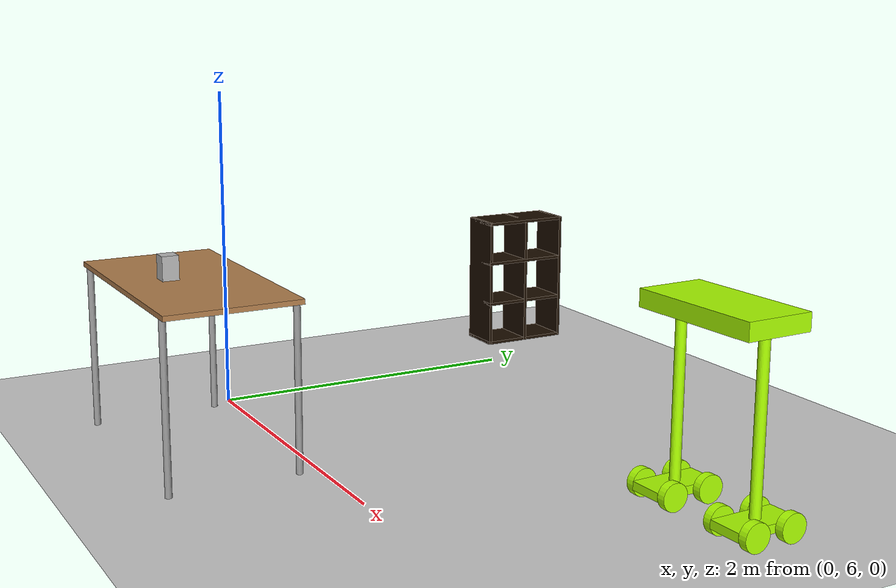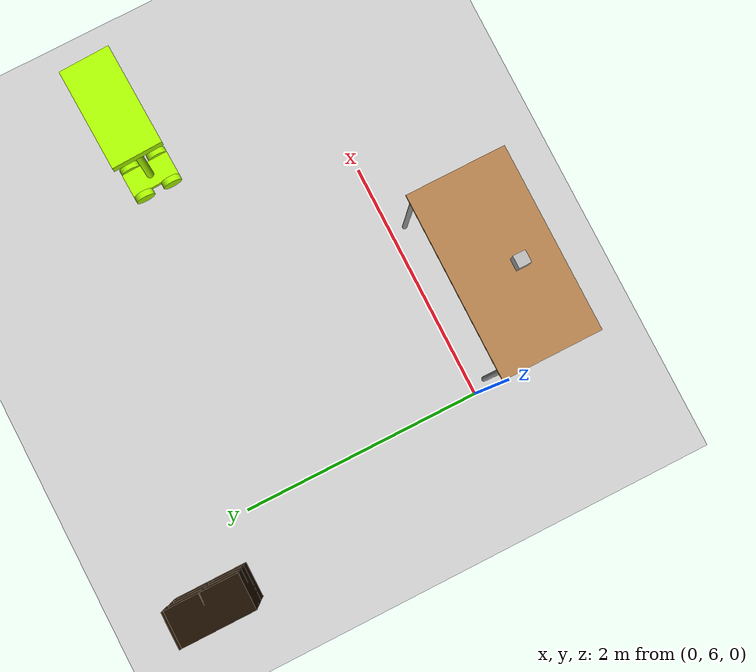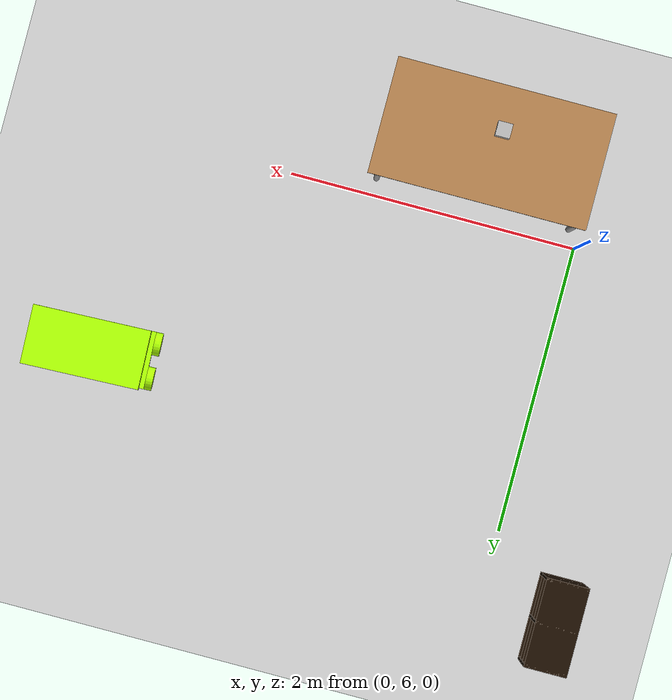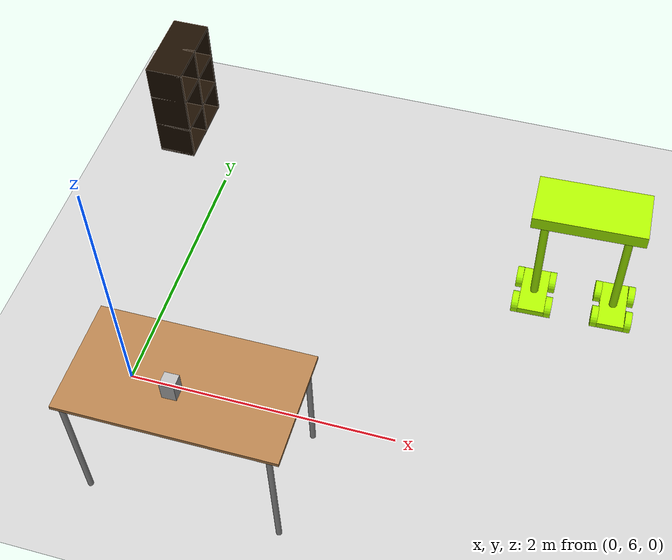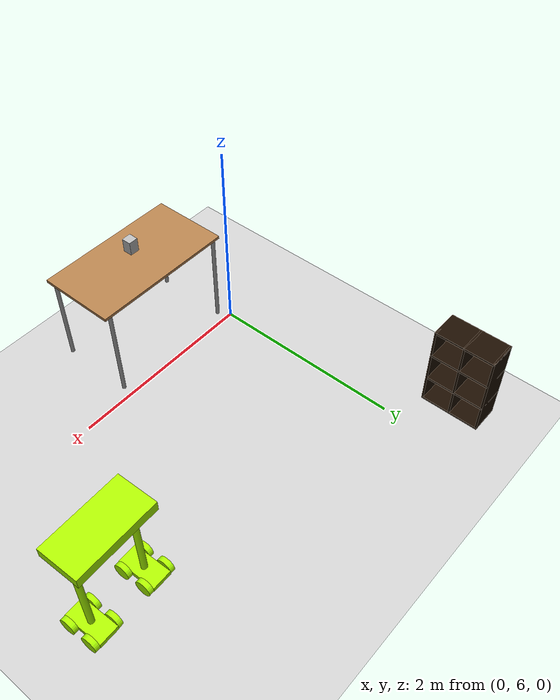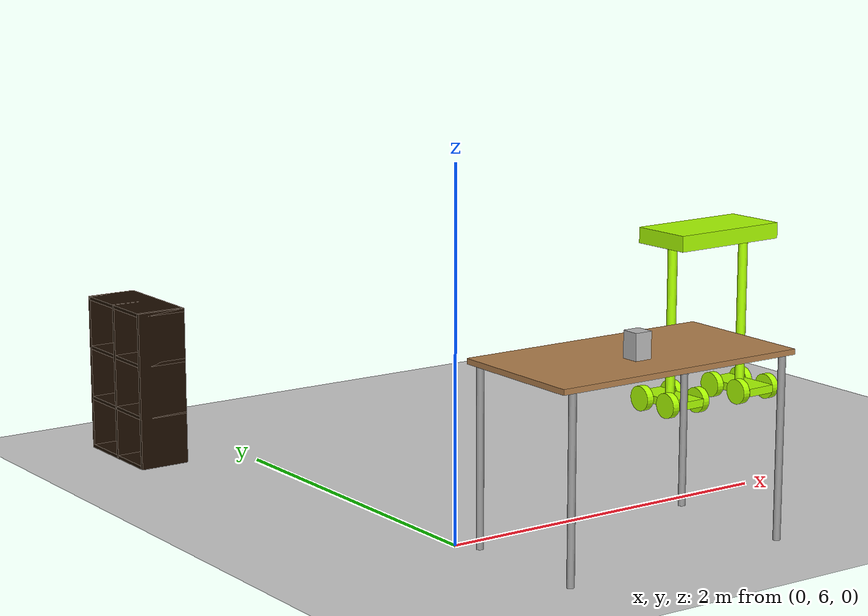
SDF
<sdf version="1.6">
 <world name="default">
  <model name="ground_plane">
   <static>1</static>
   <link name="link">
    <collision name="collision">
     <geometry><plane><normal>0 0 1</normal><size>100 100</size></plane></geometry>
     <surface><friction><ode><mu>100</mu><mu2>50</mu2></ode></friction></surface>
    </collision>
    <visual name="visual">
     <cast_shadows>0</cast_shadows>
     <geometry><plane><normal>0 0 1</normal><size>100 100</size></plane></geometry>
     <material>
      <script><uri>file://media/materials/scripts/gazebo.material</uri><name>Gazebo/Grey</name></script>
     </material>
    </visual>
   </link>
  </model>
  <model name="table_0">
   <static>1</static>
   <link name="link">
    <collision name="surface">
     <pose>0 0 1 0 -0 0</pose>
     <geometry><box><size>1.5 0.8 0.03</size></box></geometry>
     <surface><friction><ode><mu>0.6</mu><mu2>0.6</mu2></ode></friction></surface>
    </collision>
    <visual name="visual1">
     <pose>0 0 1 0 -0 0</pose>
     <geometry><box><size>1.5 0.8 0.03</size></box></geometry>
     <material>
      <script><uri>file://media/materials/scripts/gazebo.material</uri><name>Gazebo/Wood</name></script>
     </material>
    </visual>
    <collision name="front_left_leg">
     <pose>0.68 0.38 0.5 0 -0 0</pose>
     <geometry><cylinder><radius>0.02</radius><length>1</length></cylinder></geometry>
    </collision>
    <visual name="front_left_leg">
     <pose>0.68 0.38 0.5 0 -0 0</pose>
     <geometry><cylinder><radius>0.02</radius><length>1</length></cylinder></geometry>
     <material>
      <script><uri>file://media/materials/scripts/gazebo.material</uri><name>Gazebo/Grey</name></script>
     </material>
    </visual>
    <collision name="front_right_leg">
     <pose>0.68 -0.38 0.5 0 -0 0</pose>
     <geometry><cylinder><radius>0.02</radius><length>1</length></cylinder></geometry>
    </collision>
    <visual name="front_right_leg">
     <pose>0.68 -0.38 0.5 0 -0 0</pose>
     <geometry><cylinder><radius>0.02</radius><length>1</length></cylinder></geometry>
     <material>
      <script><uri>file://media/materials/scripts/gazebo.material</uri><name>Gazebo/Grey</name></script>
     </material>
    </visual>
    <collision name="back_right_leg">
     <pose>-0.68 -0.38 0.5 0 -0 0</pose>
     <geometry><cylinder><radius>0.02</radius><length>1</length></cylinder></geometry>
    </collision>
    <visual name="back_right_leg">
     <pose>-0.68 -0.38 0.5 0 -0 0</pose>
     <geometry><cylinder><radius>0.02</radius><length>1</length></cylinder></geometry>
     <material>
      <script><uri>file://media/materials/scripts/gazebo.material</uri><name>Gazebo/Grey</name></script>
     </material>
    </visual>
    <collision name="back_left_leg">
     <pose>-0.68 0.38 0.5 0 -0 0</pose>
     <geometry><cylinder><radius>0.02</radius><length>1</length></cylinder></geometry>
    </collision>
    <visual name="back_left_leg">
     <pose>-0.68 0.38 0.5 0 -0 0</pose>
     <geometry><cylinder><radius>0.02</radius><length>1</length></cylinder></geometry>
     <material>
      <script><uri>file://media/materials/scripts/gazebo.material</uri><name>Gazebo/Grey</name></script>
     </material>
    </visual>
   </link>
   <pose>0.75 5.5 0 0 -0 0</pose>
  </model>
  <model name="6_Cube_StorageE">
   <link name="Wall_0">
    <pose>0 0 0.01 0 -0 0</pose>
    <inertial>
     <mass>1.6201</mass>
     <inertia><ixx>0.0119</ixx><iyy>0.0631</iyy><izz>0.0513</izz><ixy>0</ixy><ixz>0</ixz><iyz>0</iyz></inertia>
    </inertial>
    <collision name="Wall_0_Collision"><geometry><box><size>0.616 0.296 0.02</size></box></geometry></collision>
    <visual name="Wall_0_Visual">
     <geometry><box><size>0.616 0.296 0.02</size></box></geometry>
     <material>
      <script><uri>file://media/materials/scripts/gazebo.material</uri><name>Gazebo/Grey</name></script>
      <ambient>0.105882 0.0509804 0 1</ambient>
     </material>
    </visual>
   </link>
   <joint name="0_2" type="fixed">
    <pose>-0.308 0 0 0 -0 0</pose>
    <parent>Wall_2</parent>
    <child>Wall_0</child>
    <axis>
     <xyz>1 0 0</xyz>
     <use_parent_model_frame>0</use_parent_model_frame>
     <limit><lower>-1e+16</lower><upper>1e+16</upper></limit>
    </axis>
   </joint>
   <joint name="0_12" type="fixed">
    <parent>Wall_12</parent>
    <child>Wall_0</child>
    <axis>
     <xyz>0 0 1</xyz>
     <use_parent_model_frame>0</use_parent_model_frame>
     <limit><lower>-1e+16</lower><upper>1e+16</upper></limit>
    </axis>
   </joint>
   <joint name="0_4" type="fixed">
    <pose>0.308 0 0 0 -0 0</pose>
    <parent>Wall_4</parent>
    <child>Wall_0</child>
    <axis>
     <xyz>1 0 0</xyz>
     <use_parent_model_frame>0</use_parent_model_frame>
     <limit><lower>-1e+16</lower><upper>1e+16</upper></limit>
    </axis>
   </joint>
   <link name="Wall_10">
    <pose>0 0 0.61 0 -0 0</pose>
    <inertial>
     <mass>1.6201</mass>
     <inertia><ixx>0.0119</ixx><iyy>0.0631</iyy><izz>0.0513</izz><ixy>0</ixy><ixz>0</ixz><iyz>0</iyz></inertia>
    </inertial>
    <collision name="Wall_10_Collision"><geometry><box><size>0.616 0.296 0.02</size></box></geometry></collision>
    <visual name="Wall_10_Visual">
     <geometry><box><size>0.616 0.296 0.02</size></box></geometry>
     <material>
      <script><uri>file://media/materials/scripts/gazebo.material</uri><name>Gazebo/Grey</name></script>
      <ambient>0.105882 0.0509804 0 1</ambient>
     </material>
    </visual>
   </link>
   <joint name="10_2" type="fixed">
    <pose>-0.308 0 0 0 -0 0</pose>
    <parent>Wall_2</parent>
    <child>Wall_10</child>
    <axis>
     <xyz>1 0 0</xyz>
     <use_parent_model_frame>0</use_parent_model_frame>
     <limit><lower>-1e+16</lower><upper>1e+16</upper></limit>
    </axis>
   </joint>
   <joint name="10_12" type="fixed">
    <parent>Wall_12</parent>
    <child>Wall_10</child>
    <axis>
     <xyz>0 0 1</xyz>
     <use_parent_model_frame>0</use_parent_model_frame>
     <limit><lower>-1e+16</lower><upper>1e+16</upper></limit>
    </axis>
   </joint>
   <joint name="10_4" type="fixed">
    <pose>0.308 0 0 0 -0 0</pose>
    <parent>Wall_4</parent>
    <child>Wall_10</child>
    <axis>
     <xyz>1 0 0</xyz>
     <use_parent_model_frame>0</use_parent_model_frame>
     <limit><lower>-1e+16</lower><upper>1e+16</upper></limit>
    </axis>
   </joint>
   <link name="Wall_12">
    <pose>0 0 0.4575 0 -0 0</pose>
    <inertial>
     <mass>2.4065</mass>
     <inertia><ixx>0.0177</ixx><iyy>0.1855</iyy><izz>0.168</izz><ixy>0</ixy><ixz>0</ixz><iyz>0</iyz></inertia>
    </inertial>
    <collision name="Wall_12_Collision"><geometry><box><size>0.02 0.296 0.915</size></box></geometry></collision>
    <visual name="Wall_12_Visual">
     <geometry><box><size>0.02 0.296 0.915</size></box></geometry>
     <material>
      <script><uri>file://media/materials/scripts/gazebo.material</uri><name>Gazebo/Grey</name></script>
      <ambient>0.105882 0.0509804 0 1</ambient>
     </material>
    </visual>
   </link>
   <link name="Wall_2">
    <pose>-0.298 0 0.4575 0 -0 0</pose>
    <inertial>
     <mass>2.4065</mass>
     <inertia><ixx>0.0177</ixx><iyy>0.1855</iyy><izz>0.168</izz><ixy>0</ixy><ixz>0</ixz><iyz>0</iyz></inertia>
    </inertial>
    <collision name="Wall_2_Collision"><geometry><box><size>0.02 0.296 0.915</size></box></geometry></collision>
    <visual name="Wall_2_Visual">
     <geometry><box><size>0.02 0.296 0.915</size></box></geometry>
     <material>
      <script><uri>file://media/materials/scripts/gazebo.material</uri><name>Gazebo/Grey</name></script>
      <ambient>0.105882 0.0509804 0 1</ambient>
     </material>
    </visual>
   </link>
   <link name="Wall_4">
    <pose>0.298 0 0.4575 0 -0 0</pose>
    <inertial>
     <mass>2.4065</mass>
     <inertia><ixx>0.0177</ixx><iyy>0.1855</iyy><izz>0.168</izz><ixy>0</ixy><ixz>0</ixz><iyz>0</iyz></inertia>
    </inertial>
    <collision name="Wall_4_Collision"><geometry><box><size>0.02 0.296 0.915</size></box></geometry></collision>
    <visual name="Wall_4_Visual">
     <geometry><box><size>0.02 0.296 0.915</size></box></geometry>
     <material>
      <script><uri>file://media/materials/scripts/gazebo.material</uri><name>Gazebo/Grey</name></script>
      <ambient>0.105882 0.0509804 0 1</ambient>
     </material>
    </visual>
   </link>
   <link name="Wall_6">
    <pose>0 0 0.905 0 -0 0</pose>
    <inertial>
     <mass>1.6201</mass>
     <inertia><ixx>0.0119</ixx><iyy>0.0631</iyy><izz>0.0513</izz><ixy>0</ixy><ixz>0</ixz><iyz>0</iyz></inertia>
    </inertial>
    <collision name="Wall_6_Collision"><geometry><box><size>0.616 0.296 0.02</size></box></geometry></collision>
    <visual name="Wall_6_Visual">
     <geometry><box><size>0.616 0.296 0.02</size></box></geometry>
     <material>
      <script><uri>file://media/materials/scripts/gazebo.material</uri><name>Gazebo/Grey</name></script>
      <ambient>0.105882 0.0509804 0 1</ambient>
     </material>
    </visual>
   </link>
   <joint name="6_2" type="fixed">
    <pose>-0.308 0 0 0 -0 0</pose>
    <parent>Wall_2</parent>
    <child>Wall_6</child>
    <axis>
     <xyz>2 0 0</xyz>
     <use_parent_model_frame>0</use_parent_model_frame>
     <limit><lower>-1e+16</lower><upper>1e+16</upper></limit>
    </axis>
   </joint>
   <joint name="6_12" type="fixed">
    <parent>Wall_12</parent>
    <child>Wall_6</child>
    <axis>
     <xyz>0 0 1</xyz>
     <use_parent_model_frame>0</use_parent_model_frame>
     <limit><lower>-1e+16</lower><upper>1e+16</upper></limit>
    </axis>
   </joint>
   <joint name="6_4" type="fixed">
    <pose>0.308 0 0 0 -0 0</pose>
    <parent>Wall_4</parent>
    <child>Wall_6</child>
    <axis>
     <xyz>1 0 0</xyz>
     <use_parent_model_frame>0</use_parent_model_frame>
     <limit><lower>-1e+16</lower><upper>1e+16</upper></limit>
    </axis>
   </joint>
   <link name="Wall_8">
    <pose>0 0 0.305 0 -0 0</pose>
    <inertial>
     <mass>1.6201</mass>
     <inertia><ixx>0.0119</ixx><iyy>0.0631</iyy><izz>0.0513</izz><ixy>0</ixy><ixz>0</ixz><iyz>0</iyz></inertia>
    </inertial>
    <collision name="Wall_8_Collision"><geometry><box><size>0.616 0.296 0.02</size></box></geometry></collision>
    <visual name="Wall_8_Visual">
     <geometry><box><size>0.616 0.296 0.02</size></box></geometry>
     <material>
      <script><uri>file://media/materials/scripts/gazebo.material</uri><name>Gazebo/Grey</name></script>
      <ambient>0.105882 0.0509804 0 1</ambient>
     </material>
    </visual>
   </link>
   <joint name="8_2" type="fixed">
    <pose>-0.308 0 0 0 -0 0</pose>
    <parent>Wall_2</parent>
    <child>Wall_8</child>
    <axis>
     <xyz>1 0 0</xyz>
     <use_parent_model_frame>0</use_parent_model_frame>
     <limit><lower>-1e+16</lower><upper>1e+16</upper></limit>
    </axis>
   </joint>
   <joint name="8_12" type="fixed">
    <parent>Wall_12</parent>
    <child>Wall_8</child>
    <axis>
     <xyz>0 0 1</xyz>
     <use_parent_model_frame>0</use_parent_model_frame>
     <limit><lower>-1e+16</lower><upper>1e+16</upper></limit>
    </axis>
   </joint>
   <joint name="8_4" type="fixed">
    <pose>0.308 0 0 0 -0 0</pose>
    <parent>Wall_4</parent>
    <child>Wall_8</child>
    <axis>
     <xyz>1 0 0</xyz>
     <use_parent_model_frame>0</use_parent_model_frame>
     <limit><lower>-1e+16</lower><upper>1e+16</upper></limit>
    </axis>
   </joint>
   <static>1</static>
   <pose>-0.5 8.5 0 0 -0 1.57098</pose>
  </model>
  <model name="tea_box">
   <link name="link">
    <pose>0 0 0.075 0 -0 0</pose>
    <visual name="visual">
     <geometry><box><size>0.1 0.1 0.15</size></box></geometry>
     <material>
      <script>
       <uri>file://3DGEMS/kitchen/tea_box/materials/scripts</uri>
       <uri>file://3DGEMS/kitchen/tea_box/materials/textures</uri>
       <name>tea_pat</name>
      </script>
     </material>
    </visual>
    <collision name="collision"><geometry><box><size>0.1 0.1 0.15</size></box></geometry></collision>
   </link>
   <static>1</static>
   <pose>0.7 5.4 1.01 0 -0 0</pose>
  </model>
  <model name="myRobot_1">
   <link name="link_0">
    <pose>0 -0.3 -0.151923 0 -0 0</pose>
    <inertial>
     <mass>1</mass>
     <inertia>
      <ixx>0.166667</ixx>
      <ixy>0</ixy>
      <ixz>0</ixz>
      <iyy>0.166667</iyy>
      <iyz>0</iyz>
      <izz>0.166667</izz>
     </inertia>
    </inertial>
    <visual name="visual">
     <geometry><box><size>0.4 0.2 0.05</size></box></geometry>
     <material>
      <lighting>1</lighting>
      <script><uri>file://media/materials/scripts/gazebo.material</uri><name>Gazebo/Grey</name></script>
      <ambient>0.675 1 0 1</ambient>
      <diffuse>0.675 1 0 1</diffuse>
      <specular>0.01 0.01 0.01 1</specular>
      <emissive>0 0 0 1</emissive>
      <shader type="vertex"><normal_map>__default__</normal_map></shader>
     </material>
    </visual>
    <collision name="collision">
     <geometry><box><size>0.4 0.2 0.05</size></box></geometry>
     <surface>
      <friction>
       <ode><mu>1</mu><mu2>1</mu2><fdir1>0 0 0</fdir1><slip1>0</slip1><slip2>0</slip2></ode>
       <torsional>
        <coefficient>1</coefficient>
        <patch_radius>0</patch_radius>
        <surface_radius>0</surface_radius>
        <use_patch_radius>1</use_patch_radius>
        <ode><slip>0</slip></ode>
       </torsional>
      </friction>
      <bounce><restitution_coefficient>0</restitution_coefficient><threshold>1e+06</threshold></bounce>
      <contact>
       <collide_without_contact>0</collide_without_contact>
       <collide_without_contact_bitmask>1</collide_without_contact_bitmask>
       <collide_bitmask>1</collide_bitmask>
       <ode>
        <soft_cfm>0</soft_cfm>
        <soft_erp>0.2</soft_erp>
        <kp>1e+13</kp>
        <kd>1</kd>
        <max_vel>0.01</max_vel>
        <min_depth>0</min_depth>
       </ode>
       <bullet>
        <split_impulse>1</split_impulse>
        <split_impulse_penetration_threshold>-0.01</split_impulse_penetration_threshold>
        <soft_cfm>0</soft_cfm>
        <soft_erp>0.2</soft_erp>
        <kp>1e+13</kp>
        <kd>1</kd>
       </bullet>
      </contact>
     </surface>
    </collision>
   </link>
   <link name="link_0_clone">
    <pose>0 0.3 -0.151923 0 -0 0</pose>
    <inertial>
     <mass>1</mass>
     <inertia>
      <ixx>0.166667</ixx>
      <ixy>0</ixy>
      <ixz>0</ixz>
      <iyy>0.166667</iyy>
      <iyz>0</iyz>
      <izz>0.166667</izz>
     </inertia>
    </inertial>
    <visual name="visual">
     <geometry><box><size>0.4 0.2 0.05</size></box></geometry>
     <material>
      <lighting>1</lighting>
      <script><uri>file://media/materials/scripts/gazebo.material</uri><name>Gazebo/Grey</name></script>
      <ambient>0.675 1 0 1</ambient>
      <diffuse>0.675 1 0 1</diffuse>
      <specular>0.01 0.01 0.01 1</specular>
      <emissive>0 0 0 1</emissive>
      <shader type="vertex"><normal_map>__default__</normal_map></shader>
     </material>
    </visual>
    <collision name="collision">
     <geometry><box><size>0.4 0.2 0.05</size></box></geometry>
     <surface>
      <friction>
       <ode><mu>1</mu><mu2>1</mu2><fdir1>0 0 0</fdir1><slip1>0</slip1><slip2>0</slip2></ode>
       <torsional>
        <coefficient>1</coefficient>
        <patch_radius>0</patch_radius>
        <surface_radius>0</surface_radius>
        <use_patch_radius>1</use_patch_radius>
        <ode><slip>0</slip></ode>
       </torsional>
      </friction>
      <bounce><restitution_coefficient>0</restitution_coefficient><threshold>1e+06</threshold></bounce>
      <contact>
       <collide_without_contact>0</collide_without_contact>
       <collide_without_contact_bitmask>1</collide_without_contact_bitmask>
       <collide_bitmask>1</collide_bitmask>
       <ode>
        <soft_cfm>0</soft_cfm>
        <soft_erp>0.2</soft_erp>
        <kp>1e+13</kp>
        <kd>1</kd>
        <max_vel>0.01</max_vel>
        <min_depth>0</min_depth>
       </ode>
       <bullet>
        <split_impulse>1</split_impulse>
        <split_impulse_penetration_threshold>-0.01</split_impulse_penetration_threshold>
        <soft_cfm>0</soft_cfm>
        <soft_erp>0.2</soft_erp>
        <kp>1e+13</kp>
        <kd>1</kd>
       </bullet>
      </contact>
     </surface>
    </collision>
   </link>
   <link name="link_1">
    <pose>0 -0.3 0.323077 0 -0 0</pose>
    <inertial>
     <mass>1</mass>
     <inertia><ixx>0.145833</ixx><ixy>0</ixy><ixz>0</ixz><iyy>0.145833</iyy><iyz>0</iyz><izz>0.125</izz></inertia>
    </inertial>
    <visual name="visual">
     <geometry><cylinder><radius>0.03</radius><length>1</length></cylinder></geometry>
     <material>
      <lighting>1</lighting>
      <script><uri>file://media/materials/scripts/gazebo.material</uri><name>Gazebo/Grey</name></script>
      <ambient>0.675 1 0 1</ambient>
      <diffuse>0.675 1 0 1</diffuse>
      <specular>0.01 0.01 0.01 1</specular>
      <emissive>0 0 0 1</emissive>
      <shader type="vertex"><normal_map>__default__</normal_map></shader>
     </material>
    </visual>
    <collision name="collision">
     <geometry><cylinder><radius>0.03</radius><length>1</length></cylinder></geometry>
     <surface>
      <friction>
       <ode><mu>1</mu><mu2>1</mu2><fdir1>0 0 0</fdir1><slip1>0</slip1><slip2>0</slip2></ode>
       <torsional>
        <coefficient>1</coefficient>
        <patch_radius>0</patch_radius>
        <surface_radius>0</surface_radius>
        <use_patch_radius>1</use_patch_radius>
        <ode><slip>0</slip></ode>
       </torsional>
      </friction>
      <bounce><restitution_coefficient>0</restitution_coefficient><threshold>1e+06</threshold></bounce>
      <contact>
       <collide_without_contact>0</collide_without_contact>
       <collide_without_contact_bitmask>1</collide_without_contact_bitmask>
       <collide_bitmask>1</collide_bitmask>
       <ode>
        <soft_cfm>0</soft_cfm>
        <soft_erp>0.2</soft_erp>
        <kp>1e+13</kp>
        <kd>1</kd>
        <max_vel>0.01</max_vel>
        <min_depth>0</min_depth>
       </ode>
       <bullet>
        <split_impulse>1</split_impulse>
        <split_impulse_penetration_threshold>-0.01</split_impulse_penetration_threshold>
        <soft_cfm>0</soft_cfm>
        <soft_erp>0.2</soft_erp>
        <kp>1e+13</kp>
        <kd>1</kd>
       </bullet>
      </contact>
     </surface>
    </collision>
   </link>
   <link name="link_1_clone">
    <pose>0 0.3 0.323077 0 -0 0</pose>
    <inertial>
     <mass>1</mass>
     <inertia><ixx>0.145833</ixx><ixy>0</ixy><ixz>0</ixz><iyy>0.145833</iyy><iyz>0</iyz><izz>0.125</izz></inertia>
    </inertial>
    <visual name="visual">
     <geometry><cylinder><radius>0.03</radius><length>1</length></cylinder></geometry>
     <material>
      <lighting>1</lighting>
      <script><uri>file://media/materials/scripts/gazebo.material</uri><name>Gazebo/Grey</name></script>
      <ambient>0.675 1 0 1</ambient>
      <diffuse>0.675 1 0 1</diffuse>
      <specular>0.01 0.01 0.01 1</specular>
      <emissive>0 0 0 1</emissive>
      <shader type="vertex"><normal_map>__default__</normal_map></shader>
     </material>
    </visual>
    <collision name="collision">
     <geometry><cylinder><radius>0.03</radius><length>1</length></cylinder></geometry>
     <surface>
      <friction>
       <ode><mu>1</mu><mu2>1</mu2><fdir1>0 0 0</fdir1><slip1>0</slip1><slip2>0</slip2></ode>
       <torsional>
        <coefficient>1</coefficient>
        <patch_radius>0</patch_radius>
        <surface_radius>0</surface_radius>
        <use_patch_radius>1</use_patch_radius>
        <ode><slip>0</slip></ode>
       </torsional>
      </friction>
      <bounce><restitution_coefficient>0</restitution_coefficient><threshold>1e+06</threshold></bounce>
      <contact>
       <collide_without_contact>0</collide_without_contact>
       <collide_without_contact_bitmask>1</collide_without_contact_bitmask>
       <collide_bitmask>1</collide_bitmask>
       <ode>
        <soft_cfm>0</soft_cfm>
        <soft_erp>0.2</soft_erp>
        <kp>1e+13</kp>
        <kd>1</kd>
        <max_vel>0.01</max_vel>
        <min_depth>0</min_depth>
       </ode>
       <bullet>
        <split_impulse>1</split_impulse>
        <split_impulse_penetration_threshold>-0.01</split_impulse_penetration_threshold>
        <soft_cfm>0</soft_cfm>
        <soft_erp>0.2</soft_erp>
        <kp>1e+13</kp>
        <kd>1</kd>
       </bullet>
      </contact>
     </surface>
    </collision>
   </link>
   <link name="link_2">
    <pose>0 -0 0.873077 0 -0 0</pose>
    <inertial>
     <mass>1</mass>
     <inertia>
      <ixx>0.166667</ixx>
      <ixy>0</ixy>
      <ixz>0</ixz>
      <iyy>0.166667</iyy>
      <iyz>0</iyz>
      <izz>0.166667</izz>
     </inertia>
    </inertial>
    <visual name="visual">
     <geometry><box><size>0.4 0.8 0.1</size></box></geometry>
     <material>
      <lighting>1</lighting>
      <script><uri>file://media/materials/scripts/gazebo.material</uri><name>Gazebo/Grey</name></script>
      <ambient>0.675 1 0 1</ambient>
      <diffuse>0.675 1 0 1</diffuse>
      <specular>0.01 0.01 0.01 1</specular>
      <emissive>0 0 0 1</emissive>
      <shader type="vertex"><normal_map>__default__</normal_map></shader>
     </material>
    </visual>
    <collision name="collision">
     <geometry><box><size>0.4 0.8 0.1</size></box></geometry>
     <surface>
      <friction>
       <ode><mu>1</mu><mu2>1</mu2><fdir1>0 0 0</fdir1><slip1>0</slip1><slip2>0</slip2></ode>
       <torsional>
        <coefficient>1</coefficient>
        <patch_radius>0</patch_radius>
        <surface_radius>0</surface_radius>
        <use_patch_radius>1</use_patch_radius>
        <ode><slip>0</slip></ode>
       </torsional>
      </friction>
      <bounce><restitution_coefficient>0</restitution_coefficient><threshold>1e+06</threshold></bounce>
      <contact>
       <collide_without_contact>0</collide_without_contact>
       <collide_without_contact_bitmask>1</collide_without_contact_bitmask>
       <collide_bitmask>1</collide_bitmask>
       <ode>
        <soft_cfm>0</soft_cfm>
        <soft_erp>0.2</soft_erp>
        <kp>1e+13</kp>
        <kd>1</kd>
        <max_vel>0.01</max_vel>
        <min_depth>0</min_depth>
       </ode>
       <bullet>
        <split_impulse>1</split_impulse>
        <split_impulse_penetration_threshold>-0.01</split_impulse_penetration_threshold>
        <soft_cfm>0</soft_cfm>
        <soft_erp>0.2</soft_erp>
        <kp>1e+13</kp>
        <kd>1</kd>
       </bullet>
      </contact>
     </surface>
    </collision>
   </link>
   <link name="link_3">
    <pose>-0.12 -0.425 -0.151923 1.5707 -0 0</pose>
    <inertial>
     <mass>1</mass>
     <inertia><ixx>0.145833</ixx><ixy>0</ixy><ixz>0</ixz><iyy>0.145833</iyy><iyz>0</iyz><izz>0.125</izz></inertia>
    </inertial>
    <visual name="visual">
     <geometry><cylinder><radius>0.08</radius><length>0.05</length></cylinder></geometry>
     <material>
      <lighting>1</lighting>
      <script><uri>file://media/materials/scripts/gazebo.material</uri><name>Gazebo/Grey</name></script>
      <ambient>0.675 1 0 1</ambient>
      <diffuse>0.675 1 0 1</diffuse>
      <specular>0.01 0.01 0.01 1</specular>
      <emissive>0 0 0 1</emissive>
      <shader type="vertex"><normal_map>__default__</normal_map></shader>
     </material>
    </visual>
    <collision name="collision">
     <geometry><cylinder><radius>0.08</radius><length>0.05</length></cylinder></geometry>
     <surface>
      <friction>
       <ode><mu>1</mu><mu2>1</mu2><fdir1>0 0 0</fdir1><slip1>0</slip1><slip2>0</slip2></ode>
       <torsional>
        <coefficient>1</coefficient>
        <patch_radius>0</patch_radius>
        <surface_radius>0</surface_radius>
        <use_patch_radius>1</use_patch_radius>
        <ode><slip>0</slip></ode>
       </torsional>
      </friction>
      <bounce><restitution_coefficient>0</restitution_coefficient><threshold>1e+06</threshold></bounce>
      <contact>
       <collide_without_contact>0</collide_without_contact>
       <collide_without_contact_bitmask>1</collide_without_contact_bitmask>
       <collide_bitmask>1</collide_bitmask>
       <ode>
        <soft_cfm>0</soft_cfm>
        <soft_erp>0.2</soft_erp>
        <kp>1e+13</kp>
        <kd>1</kd>
        <max_vel>0.01</max_vel>
        <min_depth>0</min_depth>
       </ode>
       <bullet>
        <split_impulse>1</split_impulse>
        <split_impulse_penetration_threshold>-0.01</split_impulse_penetration_threshold>
        <soft_cfm>0</soft_cfm>
        <soft_erp>0.2</soft_erp>
        <kp>1e+13</kp>
        <kd>1</kd>
       </bullet>
      </contact>
     </surface>
    </collision>
   </link>
   <link name="link_3_clone">
    <pose>0.12 -0.425 -0.151923 1.5707 -0 0</pose>
    <inertial>
     <mass>1</mass>
     <inertia><ixx>0.145833</ixx><ixy>0</ixy><ixz>0</ixz><iyy>0.145833</iyy><iyz>0</iyz><izz>0.125</izz></inertia>
    </inertial>
    <visual name="visual">
     <geometry><cylinder><radius>0.08</radius><length>0.05</length></cylinder></geometry>
     <material>
      <lighting>1</lighting>
      <script><uri>file://media/materials/scripts/gazebo.material</uri><name>Gazebo/Grey</name></script>
      <ambient>0.675 1 0 1</ambient>
      <diffuse>0.675 1 0 1</diffuse>
      <specular>0.01 0.01 0.01 1</specular>
      <emissive>0 0 0 1</emissive>
      <shader type="vertex"><normal_map>__default__</normal_map></shader>
     </material>
    </visual>
    <collision name="collision">
     <geometry><cylinder><radius>0.08</radius><length>0.05</length></cylinder></geometry>
     <surface>
      <friction>
       <ode><mu>1</mu><mu2>1</mu2><fdir1>0 0 0</fdir1><slip1>0</slip1><slip2>0</slip2></ode>
       <torsional>
        <coefficient>1</coefficient>
        <patch_radius>0</patch_radius>
        <surface_radius>0</surface_radius>
        <use_patch_radius>1</use_patch_radius>
        <ode><slip>0</slip></ode>
       </torsional>
      </friction>
      <bounce><restitution_coefficient>0</restitution_coefficient><threshold>1e+06</threshold></bounce>
      <contact>
       <collide_without_contact>0</collide_without_contact>
       <collide_without_contact_bitmask>1</collide_without_contact_bitmask>
       <collide_bitmask>1</collide_bitmask>
       <ode>
        <soft_cfm>0</soft_cfm>
        <soft_erp>0.2</soft_erp>
        <kp>1e+13</kp>
        <kd>1</kd>
        <max_vel>0.01</max_vel>
        <min_depth>0</min_depth>
       </ode>
       <bullet>
        <split_impulse>1</split_impulse>
        <split_impulse_penetration_threshold>-0.01</split_impulse_penetration_threshold>
        <soft_cfm>0</soft_cfm>
        <soft_erp>0.2</soft_erp>
        <kp>1e+13</kp>
        <kd>1</kd>
       </bullet>
      </contact>
     </surface>
    </collision>
   </link>
   <link name="link_3_clone_0">
    <pose>-0.12 -0.175 -0.151923 1.5707 -0 0</pose>
    <inertial>
     <mass>1</mass>
     <inertia><ixx>0.145833</ixx><ixy>0</ixy><ixz>0</ixz><iyy>0.145833</iyy><iyz>0</iyz><izz>0.125</izz></inertia>
    </inertial>
    <visual name="visual">
     <geometry><cylinder><radius>0.08</radius><length>0.05</length></cylinder></geometry>
     <material>
      <lighting>1</lighting>
      <script><uri>file://media/materials/scripts/gazebo.material</uri><name>Gazebo/Grey</name></script>
      <ambient>0.675 1 0 1</ambient>
      <diffuse>0.675 1 0 1</diffuse>
      <specular>0.01 0.01 0.01 1</specular>
      <emissive>0 0 0 1</emissive>
      <shader type="vertex"><normal_map>__default__</normal_map></shader>
     </material>
    </visual>
    <collision name="collision">
     <geometry><cylinder><radius>0.08</radius><length>0.05</length></cylinder></geometry>
     <surface>
      <friction>
       <ode><mu>1</mu><mu2>1</mu2><fdir1>0 0 0</fdir1><slip1>0</slip1><slip2>0</slip2></ode>
       <torsional>
        <coefficient>1</coefficient>
        <patch_radius>0</patch_radius>
        <surface_radius>0</surface_radius>
        <use_patch_radius>1</use_patch_radius>
        <ode><slip>0</slip></ode>
       </torsional>
      </friction>
      <bounce><restitution_coefficient>0</restitution_coefficient><threshold>1e+06</threshold></bounce>
      <contact>
       <collide_without_contact>0</collide_without_contact>
       <collide_without_contact_bitmask>1</collide_without_contact_bitmask>
       <collide_bitmask>1</collide_bitmask>
       <ode>
        <soft_cfm>0</soft_cfm>
        <soft_erp>0.2</soft_erp>
        <kp>1e+13</kp>
        <kd>1</kd>
        <max_vel>0.01</max_vel>
        <min_depth>0</min_depth>
       </ode>
       <bullet>
        <split_impulse>1</split_impulse>
        <split_impulse_penetration_threshold>-0.01</split_impulse_penetration_threshold>
        <soft_cfm>0</soft_cfm>
        <soft_erp>0.2</soft_erp>
        <kp>1e+13</kp>
        <kd>1</kd>
       </bullet>
      </contact>
     </surface>
    </collision>
   </link>
   <link name="link_3_clone_1">
    <pose>0.12 -0.175 -0.151923 1.5707 -0 0</pose>
    <inertial>
     <mass>1</mass>
     <inertia><ixx>0.145833</ixx><ixy>0</ixy><ixz>0</ixz><iyy>0.145833</iyy><iyz>0</iyz><izz>0.125</izz></inertia>
    </inertial>
    <visual name="visual">
     <geometry><cylinder><radius>0.08</radius><length>0.05</length></cylinder></geometry>
     <material>
      <lighting>1</lighting>
      <script><uri>file://media/materials/scripts/gazebo.material</uri><name>Gazebo/Grey</name></script>
      <ambient>0.675 1 0 1</ambient>
      <diffuse>0.675 1 0 1</diffuse>
      <specular>0.01 0.01 0.01 1</specular>
      <emissive>0 0 0 1</emissive>
      <shader type="vertex"><normal_map>__default__</normal_map></shader>
     </material>
    </visual>
    <collision name="collision">
     <geometry><cylinder><radius>0.08</radius><length>0.05</length></cylinder></geometry>
     <surface>
      <friction>
       <ode><mu>1</mu><mu2>1</mu2><fdir1>0 0 0</fdir1><slip1>0</slip1><slip2>0</slip2></ode>
       <torsional>
        <coefficient>1</coefficient>
        <patch_radius>0</patch_radius>
        <surface_radius>0</surface_radius>
        <use_patch_radius>1</use_patch_radius>
        <ode><slip>0</slip></ode>
       </torsional>
      </friction>
      <bounce><restitution_coefficient>0</restitution_coefficient><threshold>1e+06</threshold></bounce>
      <contact>
       <collide_without_contact>0</collide_without_contact>
       <collide_without_contact_bitmask>1</collide_without_contact_bitmask>
       <collide_bitmask>1</collide_bitmask>
       <ode>
        <soft_cfm>0</soft_cfm>
        <soft_erp>0.2</soft_erp>
        <kp>1e+13</kp>
        <kd>1</kd>
        <max_vel>0.01</max_vel>
        <min_depth>0</min_depth>
       </ode>
       <bullet>
        <split_impulse>1</split_impulse>
        <split_impulse_penetration_threshold>-0.01</split_impulse_penetration_threshold>
        <soft_cfm>0</soft_cfm>
        <soft_erp>0.2</soft_erp>
        <kp>1e+13</kp>
        <kd>1</kd>
       </bullet>
      </contact>
     </surface>
    </collision>
   </link>
   <link name="link_3_clone_2">
    <pose>-0.12 0.175 -0.151923 1.5707 -0 0</pose>
    <inertial>
     <mass>1</mass>
     <inertia><ixx>0.145833</ixx><ixy>0</ixy><ixz>0</ixz><iyy>0.145833</iyy><iyz>0</iyz><izz>0.125</izz></inertia>
    </inertial>
    <visual name="visual">
     <geometry><cylinder><radius>0.08</radius><length>0.05</length></cylinder></geometry>
     <material>
      <lighting>1</lighting>
      <script><uri>file://media/materials/scripts/gazebo.material</uri><name>Gazebo/Grey</name></script>
      <ambient>0.675 1 0 1</ambient>
      <diffuse>0.675 1 0 1</diffuse>
      <specular>0.01 0.01 0.01 1</specular>
      <emissive>0 0 0 1</emissive>
      <shader type="vertex"><normal_map>__default__</normal_map></shader>
     </material>
    </visual>
    <collision name="collision">
     <geometry><cylinder><radius>0.08</radius><length>0.05</length></cylinder></geometry>
     <surface>
      <friction>
       <ode><mu>1</mu><mu2>1</mu2><fdir1>0 0 0</fdir1><slip1>0</slip1><slip2>0</slip2></ode>
       <torsional>
        <coefficient>1</coefficient>
        <patch_radius>0</patch_radius>
        <surface_radius>0</surface_radius>
        <use_patch_radius>1</use_patch_radius>
        <ode><slip>0</slip></ode>
       </torsional>
      </friction>
      <bounce><restitution_coefficient>0</restitution_coefficient><threshold>1e+06</threshold></bounce>
      <contact>
       <collide_without_contact>0</collide_without_contact>
       <collide_without_contact_bitmask>1</collide_without_contact_bitmask>
       <collide_bitmask>1</collide_bitmask>
       <ode>
        <soft_cfm>0</soft_cfm>
        <soft_erp>0.2</soft_erp>
        <kp>1e+13</kp>
        <kd>1</kd>
        <max_vel>0.01</max_vel>
        <min_depth>0</min_depth>
       </ode>
       <bullet>
        <split_impulse>1</split_impulse>
        <split_impulse_penetration_threshold>-0.01</split_impulse_penetration_threshold>
        <soft_cfm>0</soft_cfm>
        <soft_erp>0.2</soft_erp>
        <kp>1e+13</kp>
        <kd>1</kd>
       </bullet>
      </contact>
     </surface>
    </collision>
   </link>
   <link name="link_3_clone_3">
    <pose>0.12 0.175 -0.151923 1.5707 -0 0</pose>
    <inertial>
     <mass>1</mass>
     <inertia><ixx>0.145833</ixx><ixy>0</ixy><ixz>0</ixz><iyy>0.145833</iyy><iyz>0</iyz><izz>0.125</izz></inertia>
    </inertial>
    <visual name="visual">
     <geometry><cylinder><radius>0.08</radius><length>0.05</length></cylinder></geometry>
     <material>
      <lighting>1</lighting>
      <script><uri>file://media/materials/scripts/gazebo.material</uri><name>Gazebo/Grey</name></script>
      <ambient>0.675 1 0 1</ambient>
      <diffuse>0.675 1 0 1</diffuse>
      <specular>0.01 0.01 0.01 1</specular>
      <emissive>0 0 0 1</emissive>
      <shader type="vertex"><normal_map>__default__</normal_map></shader>
     </material>
    </visual>
    <collision name="collision">
     <geometry><cylinder><radius>0.08</radius><length>0.05</length></cylinder></geometry>
     <surface>
      <friction>
       <ode><mu>1</mu><mu2>1</mu2><fdir1>0 0 0</fdir1><slip1>0</slip1><slip2>0</slip2></ode>
       <torsional>
        <coefficient>1</coefficient>
        <patch_radius>0</patch_radius>
        <surface_radius>0</surface_radius>
        <use_patch_radius>1</use_patch_radius>
        <ode><slip>0</slip></ode>
       </torsional>
      </friction>
      <bounce><restitution_coefficient>0</restitution_coefficient><threshold>1e+06</threshold></bounce>
      <contact>
       <collide_without_contact>0</collide_without_contact>
       <collide_without_contact_bitmask>1</collide_without_contact_bitmask>
       <collide_bitmask>1</collide_bitmask>
       <ode>
        <soft_cfm>0</soft_cfm>
        <soft_erp>0.2</soft_erp>
        <kp>1e+13</kp>
        <kd>1</kd>
        <max_vel>0.01</max_vel>
        <min_depth>0</min_depth>
       </ode>
       <bullet>
        <split_impulse>1</split_impulse>
        <split_impulse_penetration_threshold>-0.01</split_impulse_penetration_threshold>
        <soft_cfm>0</soft_cfm>
        <soft_erp>0.2</soft_erp>
        <kp>1e+13</kp>
        <kd>1</kd>
       </bullet>
      </contact>
     </surface>
    </collision>
   </link>
   <link name="link_3_clone_4">
    <pose>-0.12 0.425 -0.151923 1.5707 -0 0</pose>
    <inertial>
     <mass>1</mass>
     <inertia><ixx>0.145833</ixx><ixy>0</ixy><ixz>0</ixz><iyy>0.145833</iyy><iyz>0</iyz><izz>0.125</izz></inertia>
    </inertial>
    <visual name="visual">
     <geometry><cylinder><radius>0.08</radius><length>0.05</length></cylinder></geometry>
     <material>
      <lighting>1</lighting>
      <script><uri>file://media/materials/scripts/gazebo.material</uri><name>Gazebo/Grey</name></script>
      <ambient>0.675 1 0 1</ambient>
      <diffuse>0.675 1 0 1</diffuse>
      <specular>0.01 0.01 0.01 1</specular>
      <emissive>0 0 0 1</emissive>
      <shader type="vertex"><normal_map>__default__</normal_map></shader>
     </material>
    </visual>
    <collision name="collision">
     <geometry><cylinder><radius>0.08</radius><length>0.05</length></cylinder></geometry>
     <surface>
      <friction>
       <ode><mu>1</mu><mu2>1</mu2><fdir1>0 0 0</fdir1><slip1>0</slip1><slip2>0</slip2></ode>
       <torsional>
        <coefficient>1</coefficient>
        <patch_radius>0</patch_radius>
        <surface_radius>0</surface_radius>
        <use_patch_radius>1</use_patch_radius>
        <ode><slip>0</slip></ode>
       </torsional>
      </friction>
      <bounce><restitution_coefficient>0</restitution_coefficient><threshold>1e+06</threshold></bounce>
      <contact>
       <collide_without_contact>0</collide_without_contact>
       <collide_without_contact_bitmask>1</collide_without_contact_bitmask>
       <collide_bitmask>1</collide_bitmask>
       <ode>
        <soft_cfm>0</soft_cfm>
        <soft_erp>0.2</soft_erp>
        <kp>1e+13</kp>
        <kd>1</kd>
        <max_vel>0.01</max_vel>
        <min_depth>0</min_depth>
       </ode>
       <bullet>
        <split_impulse>1</split_impulse>
        <split_impulse_penetration_threshold>-0.01</split_impulse_penetration_threshold>
        <soft_cfm>0</soft_cfm>
        <soft_erp>0.2</soft_erp>
        <kp>1e+13</kp>
        <kd>1</kd>
       </bullet>
      </contact>
     </surface>
    </collision>
   </link>
   <link name="link_3_clone_5">
    <pose>0.12 0.425 -0.151923 1.5707 -0 0</pose>
    <inertial>
     <mass>1</mass>
     <inertia><ixx>0.145833</ixx><ixy>0</ixy><ixz>0</ixz><iyy>0.145833</iyy><iyz>0</iyz><izz>0.125</izz></inertia>
    </inertial>
    <visual name="visual">
     <geometry><cylinder><radius>0.08</radius><length>0.05</length></cylinder></geometry>
     <material>
      <lighting>1</lighting>
      <script><uri>file://media/materials/scripts/gazebo.material</uri><name>Gazebo/Grey</name></script>
      <ambient>0.675 1 0 1</ambient>
      <diffuse>0.675 1 0 1</diffuse>
      <specular>0.01 0.01 0.01 1</specular>
      <emissive>0 0 0 1</emissive>
      <shader type="vertex"><normal_map>__default__</normal_map></shader>
     </material>
    </visual>
    <collision name="collision">
     <geometry><cylinder><radius>0.08</radius><length>0.05</length></cylinder></geometry>
     <surface>
      <friction>
       <ode><mu>1</mu><mu2>1</mu2><fdir1>0 0 0</fdir1><slip1>0</slip1><slip2>0</slip2></ode>
       <torsional>
        <coefficient>1</coefficient>
        <patch_radius>0</patch_radius>
        <surface_radius>0</surface_radius>
        <use_patch_radius>1</use_patch_radius>
        <ode><slip>0</slip></ode>
       </torsional>
      </friction>
      <bounce><restitution_coefficient>0</restitution_coefficient><threshold>1e+06</threshold></bounce>
      <contact>
       <collide_without_contact>0</collide_without_contact>
       <collide_without_contact_bitmask>1</collide_without_contact_bitmask>
       <collide_bitmask>1</collide_bitmask>
       <ode>
        <soft_cfm>0</soft_cfm>
        <soft_erp>0.2</soft_erp>
        <kp>1e+13</kp>
        <kd>1</kd>
        <max_vel>0.01</max_vel>
        <min_depth>0</min_depth>
       </ode>
       <bullet>
        <split_impulse>1</split_impulse>
        <split_impulse_penetration_threshold>-0.01</split_impulse_penetration_threshold>
        <soft_cfm>0</soft_cfm>
        <soft_erp>0.2</soft_erp>
        <kp>1e+13</kp>
        <kd>1</kd>
       </bullet>
      </contact>
     </surface>
    </collision>
   </link>
   <joint name="link_0_JOINT_0" type="fixed">
    <parent>link_0</parent>
    <child>link_1</child>
    <physics>
     <ode><limit><cfm>0</cfm><erp>0.2</erp></limit><suspension><cfm>0</cfm><erp>0.2</erp></suspension></ode>
    </physics>
   </joint>
   <joint name="link_0_JOINT_4" type="revolute">
    <parent>link_0</parent>
    <child>link_3</child>
    <axis>
     <xyz>0 0 1</xyz>
     <use_parent_model_frame>0</use_parent_model_frame>
     <limit>
      <lower>-1.79769e+308</lower>
      <upper>1.79769e+308</upper>
      <effort>-1</effort>
      <velocity>-1</velocity>
     </limit>
     <dynamics>
      <spring_reference>0</spring_reference>
      <spring_stiffness>0</spring_stiffness>
      <damping>0</damping>
     </dynamics>
    </axis>
    <physics>
     <ode><limit><cfm>0</cfm><erp>0.2</erp></limit><suspension><cfm>0</cfm><erp>0.2</erp></suspension></ode>
    </physics>
   </joint>
   <joint name="link_0_JOINT_5" type="revolute">
    <parent>link_0</parent>
    <child>link_3_clone</child>
    <axis>
     <xyz>0 0 1</xyz>
     <use_parent_model_frame>0</use_parent_model_frame>
     <limit>
      <lower>-1.79769e+308</lower>
      <upper>1.79769e+308</upper>
      <effort>-1</effort>
      <velocity>-1</velocity>
     </limit>
     <dynamics>
      <spring_reference>0</spring_reference>
      <spring_stiffness>0</spring_stiffness>
      <damping>0</damping>
     </dynamics>
    </axis>
    <physics>
     <ode><limit><cfm>0</cfm><erp>0.2</erp></limit><suspension><cfm>0</cfm><erp>0.2</erp></suspension></ode>
    </physics>
   </joint>
   <joint name="link_0_JOINT_6" type="revolute">
    <parent>link_0</parent>
    <child>link_3_clone_0</child>
    <axis>
     <xyz>0 0 1</xyz>
     <use_parent_model_frame>0</use_parent_model_frame>
     <limit>
      <lower>-1.79769e+308</lower>
      <upper>1.79769e+308</upper>
      <effort>-1</effort>
      <velocity>-1</velocity>
     </limit>
     <dynamics>
      <spring_reference>0</spring_reference>
      <spring_stiffness>0</spring_stiffness>
      <damping>0</damping>
     </dynamics>
    </axis>
    <physics>
     <ode><limit><cfm>0</cfm><erp>0.2</erp></limit><suspension><cfm>0</cfm><erp>0.2</erp></suspension></ode>
    </physics>
   </joint>
   <joint name="link_0_JOINT_7" type="revolute">
    <parent>link_0</parent>
    <child>link_3_clone_1</child>
    <axis>
     <xyz>0 0 1</xyz>
     <use_parent_model_frame>0</use_parent_model_frame>
     <limit>
      <lower>-1.79769e+308</lower>
      <upper>1.79769e+308</upper>
      <effort>-1</effort>
      <velocity>-1</velocity>
     </limit>
     <dynamics>
      <spring_reference>0</spring_reference>
      <spring_stiffness>0</spring_stiffness>
      <damping>0</damping>
     </dynamics>
    </axis>
    <physics>
     <ode><limit><cfm>0</cfm><erp>0.2</erp></limit><suspension><cfm>0</cfm><erp>0.2</erp></suspension></ode>
    </physics>
   </joint>
   <joint name="link_0_clone_JOINT_10" type="revolute">
    <parent>link_0_clone</parent>
    <child>link_3_clone_4</child>
    <axis>
     <xyz>0 0 1</xyz>
     <use_parent_model_frame>0</use_parent_model_frame>
     <limit>
      <lower>-1.79769e+308</lower>
      <upper>1.79769e+308</upper>
      <effort>-1</effort>
      <velocity>-1</velocity>
     </limit>
     <dynamics>
      <spring_reference>0</spring_reference>
      <spring_stiffness>0</spring_stiffness>
      <damping>0</damping>
     </dynamics>
    </axis>
    <physics>
     <ode><limit><cfm>0</cfm><erp>0.2</erp></limit><suspension><cfm>0</cfm><erp>0.2</erp></suspension></ode>
    </physics>
   </joint>
   <joint name="link_0_clone_JOINT_11" type="revolute">
    <parent>link_0_clone</parent>
    <child>link_3_clone_5</child>
    <axis>
     <xyz>0 0 1</xyz>
     <use_parent_model_frame>0</use_parent_model_frame>
     <limit>
      <lower>-1.79769e+308</lower>
      <upper>1.79769e+308</upper>
      <effort>-1</effort>
      <velocity>-1</velocity>
     </limit>
     <dynamics>
      <spring_reference>0</spring_reference>
      <spring_stiffness>0</spring_stiffness>
      <damping>0</damping>
     </dynamics>
    </axis>
    <physics>
     <ode><limit><cfm>0</cfm><erp>0.2</erp></limit><suspension><cfm>0</cfm><erp>0.2</erp></suspension></ode>
    </physics>
   </joint>
   <joint name="link_0_clone_JOINT_1" type="fixed">
    <parent>link_0_clone</parent>
    <child>link_1_clone</child>
    <physics>
     <ode><limit><cfm>0</cfm><erp>0.2</erp></limit><suspension><cfm>0</cfm><erp>0.2</erp></suspension></ode>
    </physics>
   </joint>
   <joint name="link_0_clone_JOINT_8" type="revolute">
    <parent>link_0_clone</parent>
    <child>link_3_clone_2</child>
    <axis>
     <xyz>0 0 1</xyz>
     <use_parent_model_frame>0</use_parent_model_frame>
     <limit>
      <lower>-1.79769e+308</lower>
      <upper>1.79769e+308</upper>
      <effort>-1</effort>
      <velocity>-1</velocity>
     </limit>
     <dynamics>
      <spring_reference>0</spring_reference>
      <spring_stiffness>0</spring_stiffness>
      <damping>0</damping>
     </dynamics>
    </axis>
    <physics>
     <ode><limit><cfm>0</cfm><erp>0.2</erp></limit><suspension><cfm>0</cfm><erp>0.2</erp></suspension></ode>
    </physics>
   </joint>
   <joint name="link_0_clone_JOINT_9" type="revolute">
    <parent>link_0_clone</parent>
    <child>link_3_clone_3</child>
    <axis>
     <xyz>0 0 1</xyz>
     <use_parent_model_frame>0</use_parent_model_frame>
     <limit>
      <lower>-1.79769e+308</lower>
      <upper>1.79769e+308</upper>
      <effort>-1</effort>
      <velocity>-1</velocity>
     </limit>
     <dynamics>
      <spring_reference>0</spring_reference>
      <spring_stiffness>0</spring_stiffness>
      <damping>0</damping>
     </dynamics>
    </axis>
    <physics>
     <ode><limit><cfm>0</cfm><erp>0.2</erp></limit><suspension><cfm>0</cfm><erp>0.2</erp></suspension></ode>
    </physics>
   </joint>
   <joint name="link_1_JOINT_2" type="fixed">
    <parent>link_1</parent>
    <child>link_2</child>
    <physics>
     <ode><limit><cfm>0</cfm><erp>0.2</erp></limit><suspension><cfm>0</cfm><erp>0.2</erp></suspension></ode>
    </physics>
   </joint>
   <joint name="link_1_clone_JOINT_3" type="fixed">
    <parent>link_1_clone</parent>
    <child>link_2</child>
    <physics>
     <ode><limit><cfm>0</cfm><erp>0.2</erp></limit><suspension><cfm>0</cfm><erp>0.2</erp></suspension></ode>
    </physics>
   </joint>
   <static>0</static>
   <pose>3.00129 7.49946 0.231926 3e-06 6e-06 1.60669</pose>
  </model>
 </world>
</sdf>
